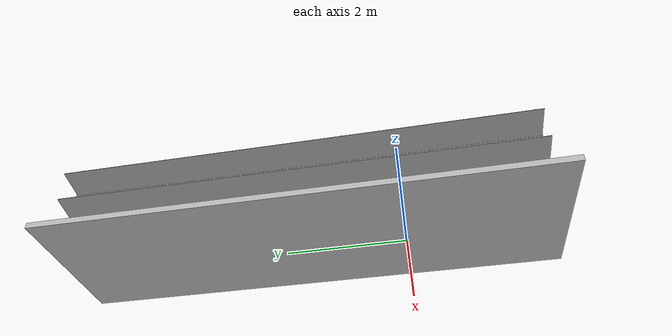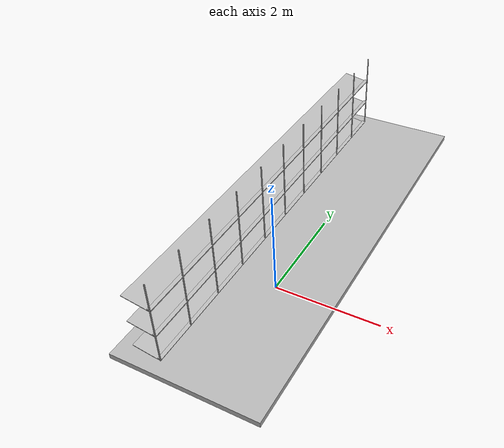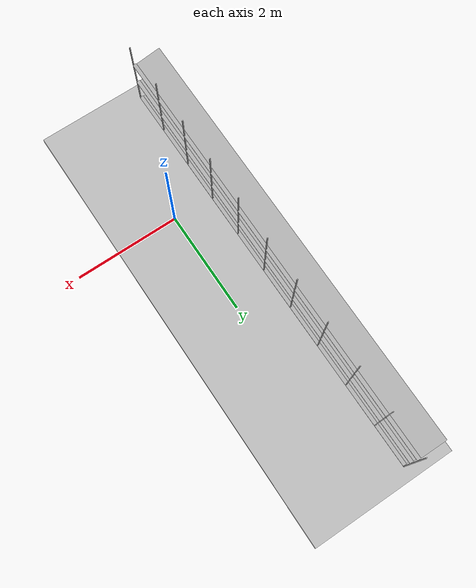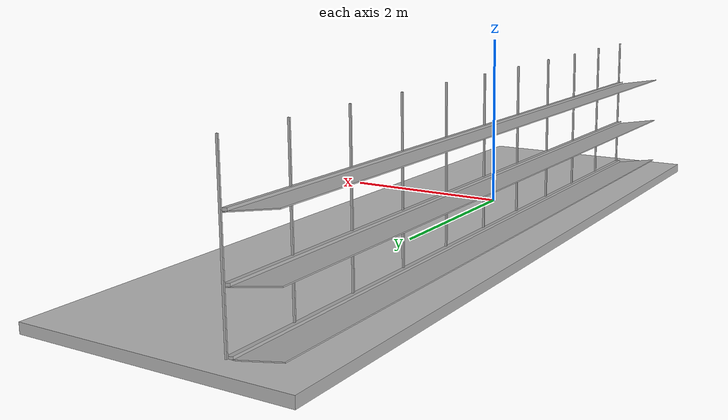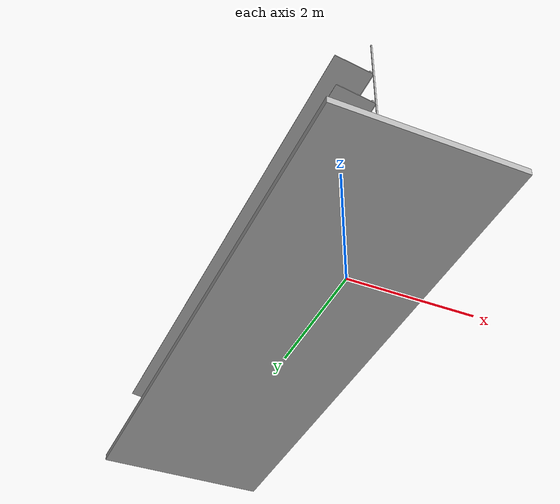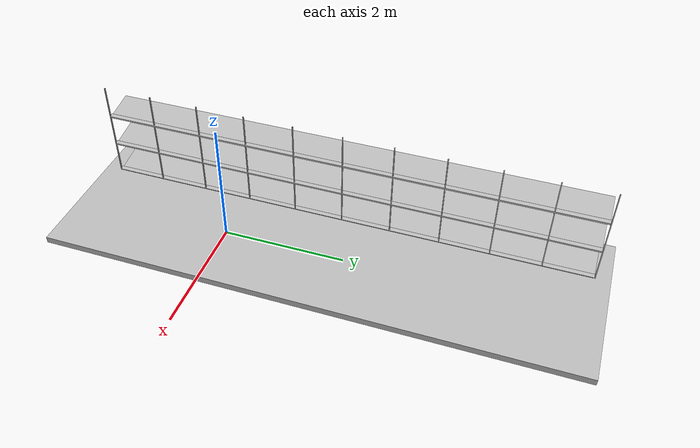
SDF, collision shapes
<?xml version="1.0" ?>
<sdf version="1.6">
  <model name="shipping_container_short_ariac">
    <static>true</static>
    <link name="link">
      <collision name="collision_floor">
        <pose>-0.18 1.715 0.1 0 0 0</pose>
        <max_contacts>10</max_contacts>
        <geometry>
          <box>
            <size>2.75 8.61 0.104</size>
          </box>
        </geometry>
      </collision>

      <!-- The vertical scaffolding bars -->
      <collision name="vertical_bar_front_0">
        <pose>-0.75 -2.33 0.97 0 0 0</pose>
        <max_contacts>10</max_contacts>
        <geometry>
          <box>
            <size>0.02 0.015 1.68</size>
          </box>
        </geometry>
      </collision>

      <collision name="vertical_bar_front_1">
        <pose>-0.75 -1.517 0.97 0 0 0</pose>
        <max_contacts>10</max_contacts>
        <geometry>
          <box>
            <size>0.02 0.015 1.68</size>
          </box>
        </geometry>
      </collision>

      <collision name="vertical_bar_front_2">
        <pose>-0.75 -0.705 0.97 0 0 0</pose>
        <max_contacts>10</max_contacts>
        <geometry>
          <box>
            <size>0.02 0.015 1.68</size>
          </box>
        </geometry>
      </collision>

      <collision name="vertical_bar_front_3">
        <pose>-0.75 0.105 0.97 0 0 0</pose>
        <max_contacts>10</max_contacts>
        <geometry>
          <box>
            <size>0.02 0.015 1.68</size>
          </box>
        </geometry>
      </collision>

      <collision name="vertical_bar_front_4">
        <pose>-0.75 0.92 0.97 0 0 0</pose>
        <max_contacts>10</max_contacts>
        <geometry>
          <box>
            <size>0.02 0.015 1.68</size>
          </box>
        </geometry>
      </collision>

      <collision name="vertical_bar_front_5">
        <pose>-0.75 1.73 0.97 0 0 0</pose>
        <max_contacts>10</max_contacts>
        <geometry>
          <box>
            <size>0.02 0.015 1.68</size>
          </box>
        </geometry>
      </collision>

      <collision name="vertical_bar_front_6">
        <pose>-0.75 2.54 0.97 0 0 0</pose>
        <max_contacts>10</max_contacts>
        <geometry>
          <box>
            <size>0.02 0.015 1.68</size>
          </box>
        </geometry>
      </collision>

      <collision name="vertical_bar_front_7">
        <pose>-0.75 3.35 0.97 0 0 0</pose>
        <max_contacts>10</max_contacts>
        <geometry>
          <box>
            <size>0.02 0.015 1.68</size>
          </box>
        </geometry>
      </collision>

      <collision name="vertical_bar_front_8">
        <pose>-0.75 4.165 0.97 0 0 0</pose>
        <max_contacts>10</max_contacts>
        <geometry>
          <box>
            <size>0.02 0.015 1.68</size>
          </box>
        </geometry>
      </collision>

      <collision name="vertical_bar_front_9">
        <pose>-0.75 4.98 0.97 0 0 0</pose>
        <max_contacts>10</max_contacts>
        <geometry>
          <box>
            <size>0.02 0.015 1.68</size>
          </box>
        </geometry>
      </collision>

      <collision name="vertical_bar_front_10">
        <pose>-0.75 5.78 0.97 0 0 0</pose>
        <max_contacts>10</max_contacts>
        <geometry>
          <box>
            <size>0.02 0.015 1.68</size>
          </box>
        </geometry>
      </collision>

      <!-- The green shelving closest to the ground -->
      <collision name="horizontal_shelf_0">
        <pose>-1.016 1.72 0.188 0 0.17 0</pose>
        <max_contacts>10</max_contacts>
        <geometry>
          <box>
            <size>0.538 8.1 0.01</size>
          </box>
        </geometry>
      </collision>

      <collision name="horizontal_shelf_0_front">
        <pose>-0.772 1.72 0.16 0 0.17 0</pose>
        <max_contacts>10</max_contacts>
        <geometry>
          <box>
            <size>0.07 8.1 0.03</size>
          </box>
        </geometry>
      </collision>

      <!-- The green shelving above the shelving closest to the ground -->
      <collision name="horizontal_shelf_1">
        <pose>-1.016 1.72 0.74 0 0.17 0</pose>
        <max_contacts>10</max_contacts>
        <geometry>
          <box>
            <size>0.538 8.1 0.01</size>
          </box>
        </geometry>
      </collision>

      <collision name="horizontal_shelf_1_front">
        <pose>-0.772 1.72 0.712 0 0.17 0</pose>
        <max_contacts>10</max_contacts>
        <geometry>
          <box>
            <size>0.07 8.1 0.03</size>
          </box>
        </geometry>
      </collision>

      <collision name="horizontal_shelf_2">
        <pose>-1.016 1.72 1.292 0 0.17 0</pose>
        <max_contacts>10</max_contacts>
        <geometry>
          <box>
            <size>0.538 8.1 0.01</size>
          </box>
        </geometry>
      </collision>

      <collision name="horizontal_shelf_2_front">
        <pose>-0.772 1.72 1.264 0 0.17 0</pose>
        <max_contacts>10</max_contacts>
        <geometry>
          <box>
            <size>0.07 8.1 0.03</size>
          </box>
        </geometry>
      </collision>

      <visual name="visual">
        <geometry>
          <mesh>
            <scale>1.1 0.7 0.8</scale>
            <uri>./meshes/ShippingContainer_Textured.obj</uri>
          </mesh>
        </geometry>
      </visual>
    </link>
  </model>
</sdf>
